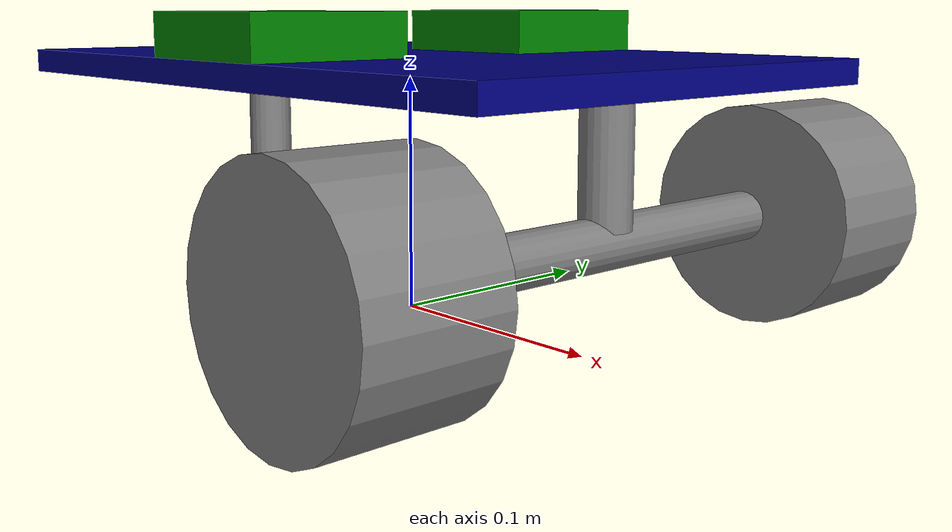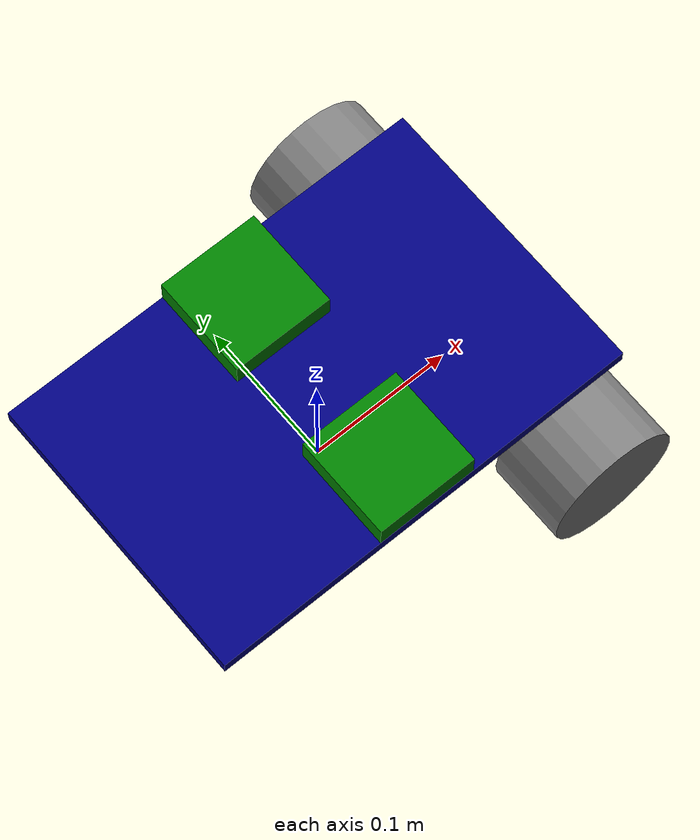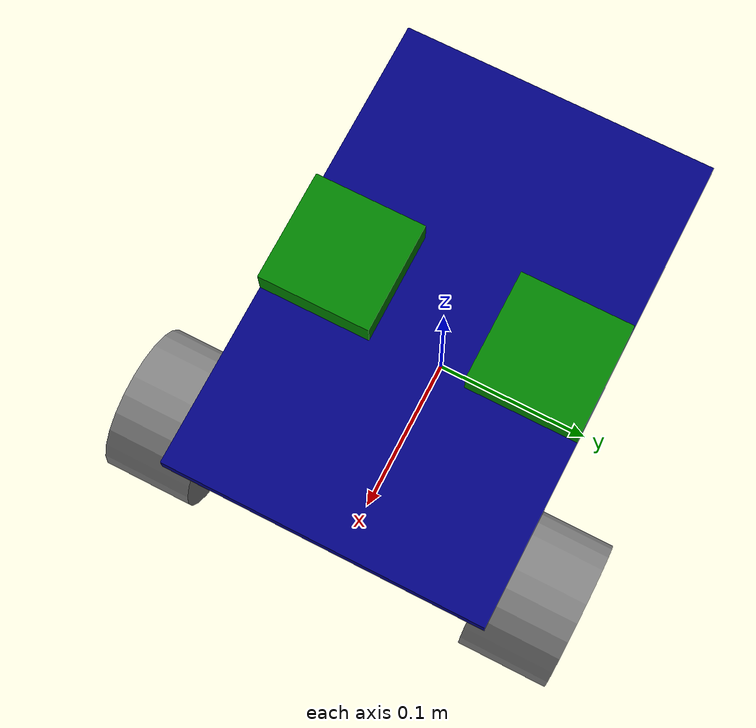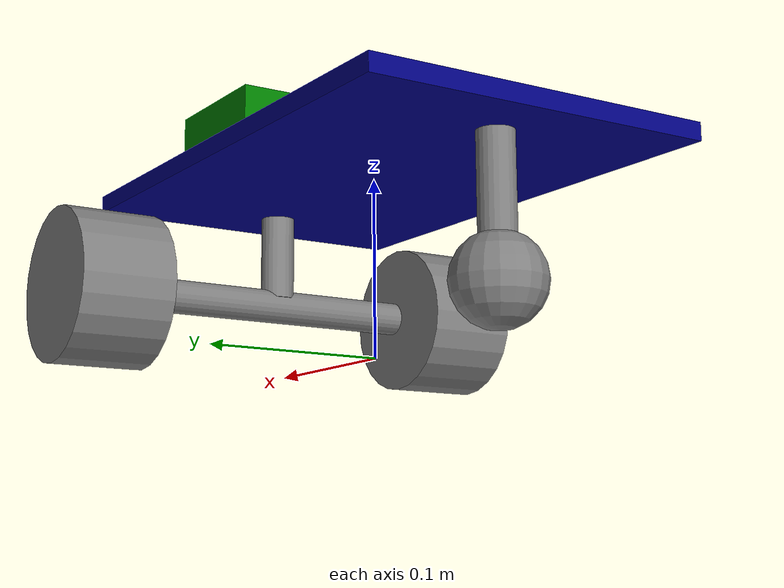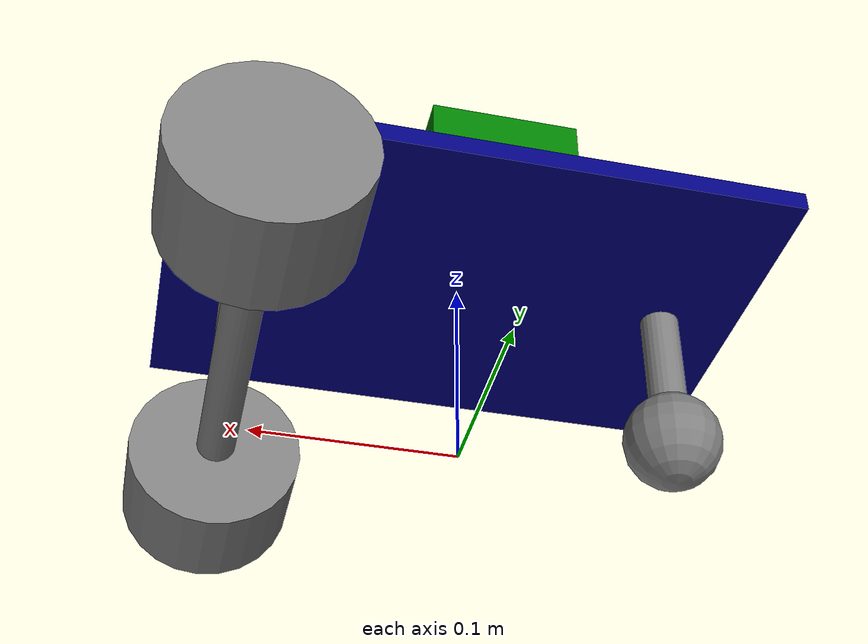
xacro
<?xml version="1.0"?>
<robot name="vescular" xmlns:xacro = "http:/www.ros.org/wiki/xacro">

    <xacro:arg name="use_ros2_control" default="true"/>

    <xacro:include filename = "common_properties.xacro" />
    <xacro:include filename = "mobile_base.xacro" />
    <xacro:if value="$(arg use_ros2_control)">
        <xacro:include filename="ros2_control.xacro" />
    </xacro:if>
    <xacro:unless value="$(arg use_ros2_control)">
        <xacro:include filename="gazebo_control.xacro" />
    </xacro:unless>
    <xacro:include filename = "imu.xacro" />

</robot>

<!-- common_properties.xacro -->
<robot  xmlns:xacro = "http:/www.ros.org/wiki/xacro">
    <material name="blue">
        <color rgba="0 0 0.5 1" />
    </material>

    <material name="green">
        <color rgba="0 0.5 0 1" />
    </material>

    <material name="grey">
        <color rgba="0.5 0.5 0.5 1" />
    </material>

    <xacro:macro name="box_inertia" params="m l w h xyz rpy">
        <inertial>
            <origin xyz="${xyz}" rpy="${rpy}" />
            <mass value="${m}" />
            <inertia ixx="${(m/12) * (h*h + l*l)}" ixy="0" ixz="0"
                     iyy="${(m/12) * (w*w + l*l)}" iyz="0"
                     izz="${(m/12) * (w*w + h*h)}" />
        </inertial>
    </xacro:macro>

    <xacro:macro name="cylinder_inertia" params="m r h xyz rpy">
        <inertial>
            <origin xyz="${xyz}" rpy="${rpy}" />
            <mass value="${m}" />
            <inertia ixx="${(m/12) * (3*r*r + h*h)}" ixy="0" ixz="0"
                     iyy="${(m/12) * (3*r*r + h*h)}" iyz="0"
                     izz="${(m/2) * (r*r)}" />
        </inertial>
    </xacro:macro>

    <xacro:macro name="sphere_inertia" params="m r xyz rpy">
        <inertial>
            <origin xyz="${xyz}" rpy="${rpy}" />
            <mass value="${m}" />
            <inertia ixx="${(2/5) * m * r * r}" ixy="0" ixz="0"
                     iyy="${(2/5) * m * r * r}" iyz="0"
                     izz="${(2/5) * m * r * r}" />
        </inertial>
    </xacro:macro>

</robot>

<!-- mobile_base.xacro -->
<robot  xmlns:xacro = "http:/www.ros.org/wiki/xacro">

    <link name="base_footprint"/>

    <link name="base_link">
        <visual>
            <geometry>
                <box size="0.3 0.2 0.01" />
            </geometry>
            <origin xyz="0 0 0.005" rpy="0 0 0" />
            <material name="blue" />
        </visual>
        <collision>
            <geometry>
                <box size="0.3 0.2 0.01" />
            </geometry>
            <origin xyz="0 0 0.005" rpy="0 0 0" />
        </collision>
        <xacro:box_inertia m="10.0" l="${2*0.3}" w="${16*0.2}" h="${2*0.01}"
                           xyz="0 0 0.005" rpy="0 0 0" />
    </link>

    <link name="right_wheel_link">
        <visual>
            <geometry>
                <cylinder radius="0.045" length="0.055" />
            </geometry>
            <origin xyz="0 0 0" rpy="${pi/2.0} 0 0" />
            <material name="grey" />
        </visual>
        <collision>
            <geometry>
                <sphere radius="0.045" />
            </geometry>
            <origin xyz="0 0 0" rpy="${pi/2.0} 0 0" />
        </collision>
        <xacro:cylinder_inertia m="0.5" r="${2*0.045}" h="${2*0.055}"
                                xyz="0 0 0" rpy="${pi/2.0} 0 0" />
    </link>

    <link name="left_wheel_link">
        <visual>
            <geometry>
                <cylinder radius="0.045" length="0.055" />
            </geometry>
            <origin xyz="0 0 0" rpy="${pi/2.0} 0 0" />
            <material name="grey" />
        </visual>
        <collision>
            <geometry>
                <sphere radius="0.045"  />
            </geometry>
            <origin xyz="0 0 0" rpy="${pi/2.0} 0 0" />
        </collision>
        <xacro:cylinder_inertia m="0.5" r="${2*0.045}" h="${2*0.055}"
                                xyz="0 0 0" rpy="${pi/2.0} 0 0" />
    </link>

    <link name="caster_wheel_link">
        <visual>
            <geometry>
                <sphere radius="0.025" />
            </geometry>
            <origin xyz="0 0 0" rpy="0 0 0" />
            <material name="grey" />
        </visual>
        <collision>
            <geometry>
                <sphere radius="0.025" />
            </geometry>
            <origin xyz="0 0 0" rpy="0 0 0" />
        </collision>
        <xacro:sphere_inertia m="0.5" r="${2*0.025}" xyz="0 0 0" rpy="0 0 0" />
    </link>

    <link name="axle_mount_link">
        <visual>
            <geometry>
                <cylinder radius="0.01" length="0.05" />
            </geometry>
            <origin xyz="0 0 0" rpy="0 0 0" />
            <material name="grey" />
        </visual>
        <collision>
            <geometry>
                <cylinder radius="0.01" length="0.05" />
            </geometry>
            <origin xyz="0 0 0" rpy="0 0 0" />
        </collision>
        <xacro:cylinder_inertia m="0.1" r="${2*0.01}" h="${2*0.05}"
                                xyz="0 0 0" rpy="0 0 0" />
    </link>

    <link name="caster_mount_link">
        <visual>
            <geometry>
                <cylinder radius="0.01" length="0.075" />
            </geometry>
            <origin xyz="0 0 0" rpy="0 0 0" />
            <material name="grey" />
        </visual>
        <collision>
            <geometry>
                <cylinder radius="0.01" length="0.075" />
            </geometry>
            <origin xyz="0 0 0" rpy="0 0 0" />
        </collision>
        <xacro:cylinder_inertia m="0.1" r="${2*0.01}" h="${2*0.075}"
                                xyz="0 0 0" rpy="0 0 0" />
    </link>

    <link name="axle_link">
        <visual>
            <geometry>
                <cylinder radius="0.01" length="0.17" />
            </geometry>
            <origin xyz="0 0 0" rpy="${pi/2.0} 0 0" />
            <material name="grey" />
        </visual>
        <collision>
            <geometry>
                <cylinder radius="0.01" length="0.17" />
            </geometry>
            <origin xyz="0 0 0" rpy="${pi/2.0} 0 0" />
        </collision>
        <xacro:cylinder_inertia m="0.1" r="${2*0.01}" h="${2*0.17}"
                                xyz="0 0 0" rpy="${pi/2.0} 0 0" />
    </link>

<!-- joints section -->
    <joint name="base_joint" type="fixed">
        <parent link="base_footprint" />
        <child link="base_link" />
        <origin xyz="0 0 0.1" rpy="0 0 0"/>
    </joint>

    <joint name="axle_right_wheel_joint" type="continuous">
        <parent link="axle_link" />
        <child link="right_wheel_link" />
        <origin xyz="0 -0.116 0" rpy="0 0 0" />
        <axis xyz="0 1 0" />
    </joint>

    <joint name="axle_left_wheel_joint" type="continuous">
        <parent link="axle_link" />
        <child link="left_wheel_link" />
        <origin xyz="0 0.116 0" rpy="0 0 0" />
        <axis xyz="0 1 0" />
    </joint>

    <joint name="caster_mount_caster_wheel_joint" type="fixed">
        <parent link="caster_mount_link" />
        <child link="caster_wheel_link" />
        <origin xyz="0 0 -0.0375" rpy="0 0 0" />
    </joint>

    <joint name="base_axle_mount_joint" type="fixed">
        <parent link="base_link" />
        <child link="axle_mount_link" />
        <origin xyz="0.11 0 -0.025" rpy="0 0 0" />
    </joint>
    <joint name="base_caster_mount_joint" type="fixed">
        <parent link="base_link" />
        <child link="caster_mount_link" />
        <origin xyz="-0.11 0 -0.0375" rpy="0 0 0" />
    </joint>

    <joint name="axle_axle_mount_joint" type="fixed">
        <parent link="axle_mount_link" />
        <child link="axle_link" />
        <origin xyz="0 0 -0.030" rpy="0 0 0" />
    </joint>

        <!-- colors in gazebo world -->
    <gazebo reference="base_link">
        <material>Gazebo/Blue</material>
    </gazebo>

    <gazebo reference="right_wheel_link">
        <material>Gazebo/Grey</material>
    </gazebo>

    <gazebo reference="left_wheel_link">
        <material>Gazebo/Grey</material>
    </gazebo>

    <gazebo reference="caster_wheel_link">
        <material>Gazebo/Grey</material>
        <mu1 value = "0.001" />
        <mu2 value = "0.001" />
    </gazebo>

</robot>

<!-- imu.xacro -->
<robot  xmlns:xacro = "http:/www.ros.org/wiki/xacro">
    <link name="imu_right_link">
        <visual>
            <geometry>
                <box size="0.07 0.07 0.018" />
            </geometry>
            <origin xyz="0 0 0" rpy="0 0 0" />
            <material name="green" />
        </visual>
        <collision>
            <geometry>
                <box size="0.07 0.07 0.018" />
            </geometry>
            <origin xyz="0 0 0" rpy="0 0 0" />
        </collision>
        <xacro:box_inertia m="0.2" l="${2*0.07}" w="${2*0.07}" h="${2*0.018}"
                           xyz="0 0 0" rpy="0 0 0" />
    </link>

    <joint name="imu_right_base_joint" type="fixed">
        <parent link="base_link" />
        <child link="imu_right_link" />
        <origin xyz="0 -0.065 0.019" rpy="0 -${pi} 0"/>
    </joint>

    <gazebo reference="imu_right_link">
        <material>Gazebo/Red</material>
        <sensor name="imu_right" type="imu">
            <!-- ensure the sensor is active (required) -->
            <always_on>true</always_on>
            <update_rate>30</update_rate>
            <plugin name="my_imu_plugin_1" filename="libgazebo_ros_imu_sensor.so">
              <ros>
                <!-- publish to /imu/data -->
                <namespace>/imu_right</namespace>
                <remapping>~/out:=data</remapping>
              </ros>
            </plugin>
          </sensor>
      </gazebo>

      <link name="imu_left_link">
        <visual>
            <geometry>
                <box size="0.07 0.07 0.018" />
            </geometry>
            <origin xyz="0 0 0" rpy="0 0 0" />
            <material name="green" />
        </visual>
        <collision>
             <geometry>
                <box size="0.07 0.07 0.018" />
            </geometry>
            <origin xyz="0 0 0" rpy="0 0 0" />
        </collision>
        <xacro:box_inertia m="0.2" l="${2*0.07}" w="${2*0.07}" h="${2*0.018}"
                           xyz="0 0 0" rpy="0 0 0" />
    </link>

    <joint name="imu_left_base_joint" type="fixed">
        <parent link="base_link" />
        <child link="imu_left_link" />
        <origin xyz="0 0.065 0.019" rpy="0 -${pi} 0"/>
    </joint>

    <gazebo reference="imu_left_link">
        <material>Gazebo/Red</material>
        <sensor name="imu_left" type="imu">
            <!-- ensure the sensor is active (required) -->
            <always_on>true</always_on>
            <update_rate>30</update_rate>
            <plugin name="my_imu_plugin_2" filename="libgazebo_ros_imu_sensor.so">
              <ros>
                <!-- publish to /imu/data -->
                <namespace>/imu_left</namespace>
                <remapping>~/out:=data</remapping>
              </ros>
            </plugin>
          </sensor>
      </gazebo>

</robot>
